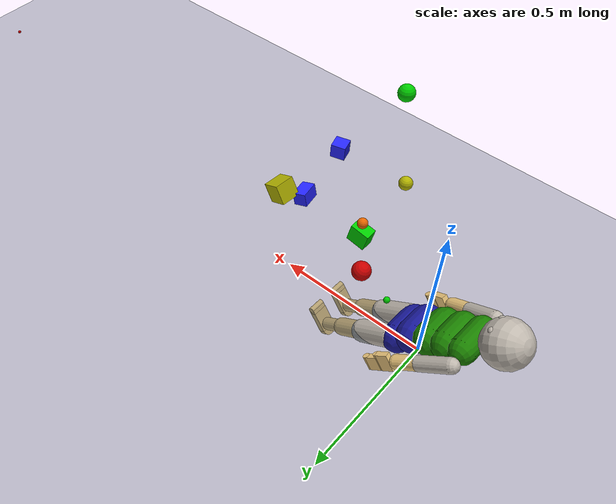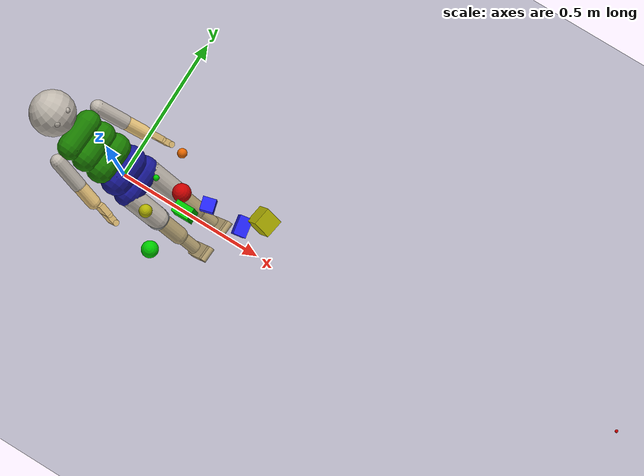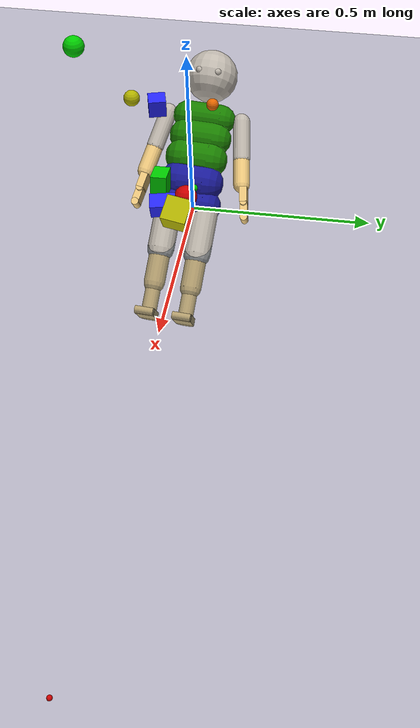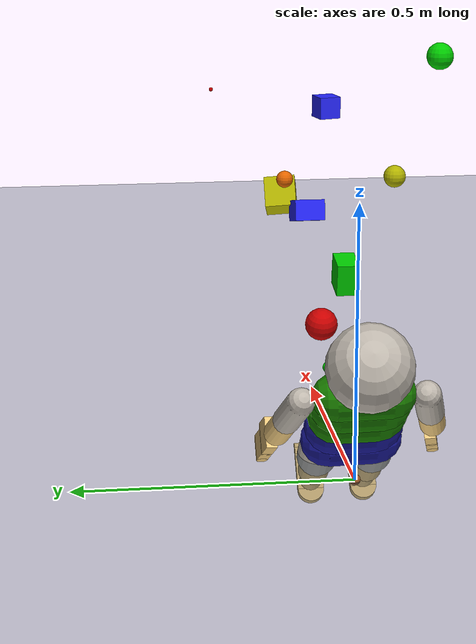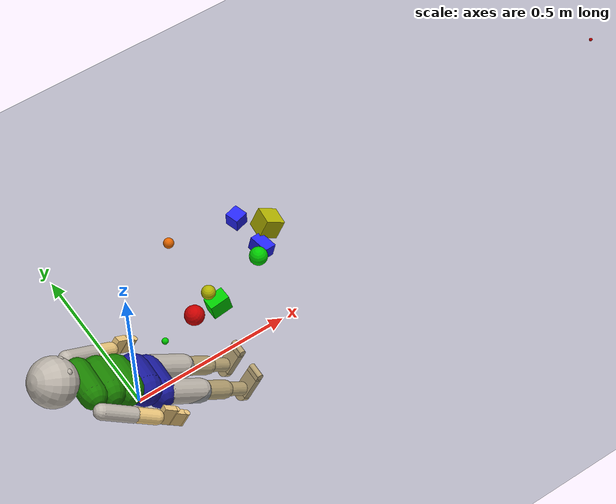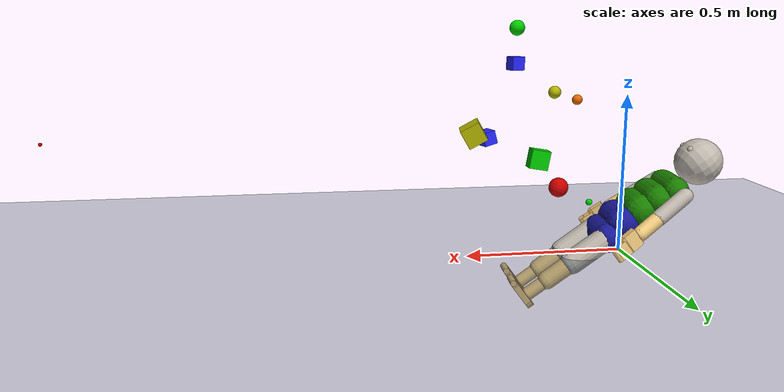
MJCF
<mujoco model="MIMo">

    <compiler inertiafromgeom="true" angle="degree"/>

    <option gravity="0 0 -9.81" timestep="0.005" iterations="50" tolerance="1e-10" solver="Newton" jacobian="dense" cone="elliptic" impratio="1.0"/>

    <size nconmax="1000" njmax="5000" nstack="10000000"/>

    <visual>
        <map force="0.1" zfar="30" znear="0.005"/>
        <rgba haze="0.15 0.25 0.35 0.5"/>
        <quality shadowsize="4096"/>
        <global offwidth="800" offheight="800"/>
    </visual>

    <default>

        <default class="scene">
			<geom condim="6" friction="1 0.005 0.0002" solimp="0.9995 0.9999 0.001 0.5 1" solref="0.005 1"/>
			<default class="scene:bouncy">
				<geom solimp="0.99 0.995 0.001 0.5 2" solref="-20000 -20"/>
			</default>
		</default>

        <geom material="matgeom" condim="3" solimp="0.95 0.99 0.001 0.5 1" solref="0.005 1"/>
    </default>

    <asset>
        <texture type="skybox" builtin="gradient" rgb1="0.3 0.5 0.7" rgb2="0 0 0" width="512" height="512"/>

        <texture name="texplane" type="2d" builtin="checker" rgb1=".2 .3 .4" rgb2=".1 0.15 0.2" width="512" height="512" mark="cross" markrgb=".8 .8 .8"/>

        <texture name="texgeom" type="cube" builtin="flat" mark="cross" width="127" height="1278"
            rgb1="0.8 0.6 0.4" rgb2="0.8 0.6 0.4" markrgb="1 1 1" random="0.01"/>

        <material name="matplane" reflectance="0.3" texture="texplane" texrepeat="1 1" texuniform="true"/>

        <material name="matgeom" texture="texgeom" texuniform="true" rgba="0.8 0.6 .4 1"/>

		<material name="matmocap" texture="texgeom" texuniform="true" rgba="0.5 0 0.5 0.5"/>

		<material name="red" rgba="0.8 0 0 1" specular=".2" shininess=".8"/>
		<material name="green" rgba="0 0.8 0 1" specular=".2" shininess=".8"/>
		<material name="blue" rgba="0.15 0.15 1 1" specular=".2" shininess=".8"/>
		<material name="yellow" rgba="0.7 0.7 0 1" specular=".2" shininess=".8"/>
		<material name="yellow_emit" rgba="0.7 0.7 0 1" specular="0.0" shininess=".4" emission="0.8"/>
		<material name="orange" rgba="0.9 0.4 0 1" specular=".2" shininess=".8"/>
    </asset>

	<!-- Import everything except the kinematic tree -->
	<include file="explore_meta.xml"></include>

	<equality>
		<weld body1="mimo_location"/>
	</equality>

    <worldbody>
        <geom name="floor" pos="0 0 0" size="0 0 .25" type="plane" material="matplane" condim="3"/>

        <light directional="false" diffuse=".7 .7 .7" specular="0 0 0" pos="-1 0 5" dir="0 0 -1" castshadow="false"/>
        <light mode="targetbodycom" target="upper_body" directional="false" diffuse=".4 .4 .4" specular="0.3 0.3 0.3" pos="0.2 0 3.0" dir="0 0 -1"/>

		<!-- The location and orientation of the base model can be set using this body -->
		<body name="mimo_location" pos="0.0579584 -0.00157173 0.0566738" quat="0.892294 -0.0284863 -0.450353 -0.0135029">
			<freejoint name="mimo_location"/>
			<include file="mimo/MIMo_model.xml"></include> <!-- Import the actual model-->
		</body>

		<!--body mocap="true" name="mocap" pos="1 0 0.4"-->

		<!-- Static -->

		<!-- Red Ball is used to test visual acuity -->
		<!-- expected acuity of an infant is 20/400, aka
			it should be able to detect a 10mm object at 1.7m distance.
			Barely visible with sigma=1 gaussian blur
		 -->
		<body name="red_ball" pos="1.7 0.08 0.4">
			<geom class="scene" type="sphere" material="red" size="0.005" pos="0 0 0" density="200"/>
		</body>

		<!--body name="red_cube" pos=".2 0.2 0.2" euler="0 -20 0"-->
		<body name="red_sphere" pos=".22 0.027 0.22" euler="0 -20 0">
			<geom class="scene" type="sphere" material="red" size="0.03" pos="0 0 0" density="200"/>
		</body>

		<!--body name="green_cube" pos=".27 -0.025 0.3" euler="0 -10 0"-->

		<body name="green_sphere_obstacle" pos=".12 0.03 0.17" euler="0 -10 0">
			<geom class="scene" type="sphere" material="green" size="0.01" pos="0 0 0" density="200"/>
		</body>

		<body name="green_cube" pos=".27 -0.025 0.3" euler="0 -10 0">
			<geom class="scene" type="box" material="green" size="0.03 0.02 0.03" pos="0 0 0" density="200"/>
		</body>

		<body name="yellow_cube" pos=".5 0.065 0.4" euler="0 30 -10">
			<geom class="scene" type="box" material="yellow" size="0.03 0.03 0.03" pos="0 0 0" density="200"/>
		</body>

		<body name="blue_cube" pos=".45 0.02 0.38" euler="0 15 10">
			<geom class="scene" type="box" material="blue" size="0.02 0.03 0.02" pos="0 0 0" density="200"/>
		</body>

        <!-- Loose Objects -->

		<body name="blue_cube_move" pos=".36 0.0 0.6" euler="0 0 15">
			<freejoint/>
			<geom class="scene" type="box" material="blue" size="0.02 0.02 0.02" pos="0 0 0" density="200"/>
		</body>

		<body name="green_sphere_move" pos=".3 -0.2 0.7">
			<freejoint/>
			<geom class="scene:bouncy" type="sphere" material="green" size="0.025" pos="0 0 0" density="200"/>
		</body>

		<body name="yellow_sphere_move" pos=".2 -0.1 0.5">
			<freejoint/>
			<geom name="geom_ysm" class="scene:bouncy" type="sphere" material="yellow_emit" size="0.02" pos="0 0 0" density="200"/>
		</body>

		<body name="orange_sphere" pos=".2 0.1 0.5">
			<freejoint/>
			<geom class="scene:bouncy" type="sphere" material="orange" size="0.015" pos="0 0 0" density="200"/>
		</body>

		<!-- Targets -->

		<body name="head_target" mocap="true" pos=".0 .0 .0">
			<geom type="sphere" size="0.01" contype="0" conaffinity="0"/>
		</body>
		<body name="hand_target" mocap="true" pos=".0 .0 .0">
			<geom type="sphere" size="0.01" contype="0" conaffinity="0"/>
		</body>

    </worldbody>

</mujoco>

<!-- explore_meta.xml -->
<mujoco model="MIMo">
	<!-- This script is used to control MIMo's joints with velocity commands -->

	<!-- We use the first three user values on actuators to store the muscle model parameters. The first is VMAX, the next two are FMAX.-->
	<size nuser_actuator="3"/>

	<default>
		<default class="mimo">
        	<joint limited="true" damping=".1" stiffness=".1" armature="0.001" solimplimit="0.98 0.99 0.001 .5 1" solreflimit="0.02 1"/>
        	<geom condim="3" material="skin" friction="1 0.005 0.0002" solimp="0.95 0.99 0.001 0.5 1" solref="0.005 1"/>
        	<intvelocity ctrlrange="-10 10" ctrllimited="true" forcelimited="true" actrange="-1.57 1.57" kp="10.0"/>
        	<!--velocity ctrlrange="-10 10" ctrllimited="true" kv='10' forcelimited="true"/--> <!-- inheritrange sets actrange to the range of the joints acted upon, to avoid integrating beyond the joint limits -->
		</default>
    </default>

    <asset>

		<texture name="tex_head_default" type="cube" fileright="tex/head_front.png" fileleft="tex/head_back.png" fileup="tex/head_left.png" filedown="tex/head_right.png" filefront="tex/head_top.png" rgb1="0.95 .8 .5"/>
		<texture name="tex_head_happy" type="cube" fileright="tex/head_front_happy.png" fileleft="tex/head_back.png" fileup="tex/head_left.png" filedown="tex/head_right.png" filefront="tex/head_top.png" rgb1="0.95 .8 .5"/>
		<texture name="tex_head_sad" type="cube" fileright="tex/head_front_sad.png" fileleft="tex/head_back.png" fileup="tex/head_left.png" filedown="tex/head_right.png" filefront="tex/head_top.png" rgb1="0.95 .8 .5"/>
		<texture name="tex_head_surprised" type="cube" fileright="tex/head_front_surprised.png" fileleft="tex/head_back.png" fileup="tex/head_left.png" filedown="tex/head_right.png" filefront="tex/head_top.png" rgb1="0.95 .8 .5"/>
		<texture name="tex_head_angry" type="cube" fileright="tex/head_front_angry.png" fileleft="tex/head_back.png" fileup="tex/head_left.png" filedown="tex/head_right.png" filefront="tex/head_top.png" rgb1="0.95 .8 .5"/>
		<texture name="tex_head_disgusted" type="cube" fileright="tex/head_front_disgusted.png" fileleft="tex/head_back.png" fileup="tex/head_left.png" filedown="tex/head_right.png" filefront="tex/head_top.png" rgb1="0.95 .8 .5"/>
		<texture name="tex_head_scared" type="cube" fileright="tex/head_front_scared.png" fileleft="tex/head_back.png" fileup="tex/head_left.png" filedown="tex/head_right.png" filefront="tex/head_top.png" rgb1="0.95 .8 .5"/>
		<texture name="tex_top_sleeve" type="cube" fileright="tex/sleeve_right.png" fileleft="tex/sleeve_left.png" fileup="tex/sleeve_up.png" filedown="tex/sleeve_down.png" filefront="tex/sleeve_front.png" fileback="tex/sleeve_back.png" rgb1="0.95 .8 .5"/>
		<texture name="tex_pants_leg" type="cube" fileright="tex/leg_right.png" fileleft="tex/leg_left.png" fileup="tex/leg_up.png" filedown="tex/leg_down.png" filefront="tex/leg_front.png" fileback="tex/leg_back.png" rgb1="0.95 .8 .5"/>
		<texture name="tex_eye_left" type="cube" fileright="tex/eye_pupil_left.png" rgb1="1 1 1"/>
		<texture name="tex_eye_right" type="cube" fileright="tex/eye_pupil_right.png" rgb1="1 1 1"/>

		<material name="skin" rgba="0.95 0.8 0.5 1" specular=".15" shininess=".7"/>
		<material name="buttons" rgba=".05 .05 .05 1" specular=".9" shininess=".9"/>
		<material name="head" texture="tex_head_default" texuniform="true" specular=".0" shininess=".0"/>
		<material name="top_up" rgba=".1 .5 0.0 1" specular=".0" shininess=".0"/>
		<material name="top_middle" rgba=".1 .5 0.0 1" specular=".0" shininess=".0"/>
		<material name="top_down" rgba=".1 .5 0.0 1" specular=".0" shininess=".0"/>
		<material name="top_sleeve" texture="tex_top_sleeve" texuniform="true" specular=".0" shininess=".0"/>
		<material name="pants_up" rgba="0.1 0.1 0.6 1" specular=".0" shininess=".0"/>
		<material name="pants_down" rgba="0.1 0.1 0.6 1" specular=".0" shininess=".0"/>
		<material name="pants_leg" texture="tex_pants_leg" texuniform="true" specular=".0" shininess=".0"/>
		<material name="eye_left" texture="tex_eye_left" texuniform="true" specular=".0" shininess=".0"/>
		<material name="eye_right" texture="tex_eye_right" texuniform="true" specular=".0" shininess=".0"/>

    </asset>

	<!-- Internal contacts should not have friction to reduce "getting stuck" on ourselves-->
	<contact>
		<pair geom1="lb" geom2="ub1" condim="1"/>
		<exclude body1="left_eye" body2="upper_body"/>
		<exclude body1="right_eye" body2="upper_body"/>

	</contact>

	<tendon>
		<fixed class="mimo" name="hip_bend" limited="true" range="-.01 .01">
			<joint joint="robot:hip_bend1" coef="1"/>
			<joint joint="robot:hip_bend2" coef="-1"/>
		</fixed>
		<fixed class="mimo" name="hip_rotation" limited="true" range="-.01 .01">
			<joint joint="robot:hip_rot1" coef="1"/>
			<joint joint="robot:hip_rot2" coef="-1"/>
		</fixed>
		<fixed class="mimo" name="hip_lean" limited="true" range="-.01 .01">
			<joint joint="robot:hip_lean1" coef="1"/>
			<joint joint="robot:hip_lean2" coef="-.5"/>
		</fixed>
		<fixed class="mimo" name="head_limits1" limited="true" range="-2.1 2.1">
			<joint joint="robot:head_swivel" coef="1"/>
			<joint joint="robot:head_tilt_side" coef="1"/>
		</fixed>
		<fixed class="mimo" name="head_limits2" limited="true" range="-2.1 2.1">
			<joint joint="robot:head_tilt" coef="1"/>
			<joint joint="robot:head_tilt_side" coef="1"/>
		</fixed>
		<fixed class="mimo" name="head_limits3" limited="true" range="-2.1 2.1">
			<joint joint="robot:head_swivel" coef="1"/>
			<joint joint="robot:head_tilt" coef="1"/>
		</fixed>
		<fixed class="mimo" name="head_limits1_sym" limited="true" range="-2.1 2.1">
			<joint joint="robot:head_swivel" coef="1"/>
			<joint joint="robot:head_tilt_side" coef="-1"/>
		</fixed>
		<fixed class="mimo" name="head_limits2_sym" limited="true" range="-2.1 2.1">
			<joint joint="robot:head_tilt" coef="1"/>
			<joint joint="robot:head_tilt_side" coef="-1"/>
		</fixed>
		<fixed class="mimo" name="head_limits3_sym" limited="true" range="-2.1 2.1">
			<joint joint="robot:head_swivel" coef="1"/>
			<joint joint="robot:head_tilt" coef="-1"/>
		</fixed>
	</tendon>

	<sensor>
		<accelerometer name="vestibular_acc" site="vestibular"/>
		<gyro name="vestibular_gyro" site="vestibular"/>

		<torque name="proprio:neck" site="torque_neck"/>
		<torque name="proprio:left_eye" site="torque_left_eye"/>
		<torque name="proprio:right_eye" site="torque_right_eye"/>

		<torque name="proprio:trunk_upper" site="torque_ub"/>
		<torque name="proprio:trunk_lower" site="torque_lb"/>

		<torque name="proprio:right_shoulder" site="torque_right_shoulder"/>
		<torque name="proprio:right_elbow" site="torque_right_elbow"/>
		<torque name="proprio:right_wrist" site="torque_right_wrist"/>
		<torque name="proprio:right_fingers" site="torque_right_fingers"/>

		<torque name="proprio:left_shoulder" site="torque_left_shoulder"/>
		<torque name="proprio:left_elbow" site="torque_left_elbow"/>
		<torque name="proprio:left_wrist" site="torque_left_wrist"/>
		<torque name="proprio:left_fingers" site="torque_left_fingers"/>

		<torque name="proprio:right_hip" site="torque_right_hip"/>
		<torque name="proprio:right_knee" site="torque_right_knee"/>
		<torque name="proprio:right_ankle" site="torque_right_ankle"/>
		<torque name="proprio:right_toes" site="torque_right_toes"/>

		<torque name="proprio:left_hip" site="torque_left_hip"/>
		<torque name="proprio:left_knee" site="torque_left_knee"/>
		<torque name="proprio:left_ankle" site="torque_left_ankle"/>
		<torque name="proprio:left_toes" site="torque_left_toes"/>
	</sensor>

	<actuator>
		<intvelocity class="mimo"	name="act:hip_bend" 						joint="robot:hip_bend1" 	 actrange="-0.2967 0.5323" 		forcerange="-1 .765"	user=".8574 32.93 22.97"/>
		<intvelocity class="mimo"	name="act:hip_twist" 						joint="robot:hip_rot1" 		  actrange="-0.3142 0.3142"		forcerange="-1 1"		user="1.699 8.136 8.136"/>
		<intvelocity class="mimo"	name="act:hip_lean" 						joint="robot:hip_lean1" 	  actrange="-0.2443 0.2443"		forcerange="-1 1"		user="1.278 1.264 1.264"/>

		<intvelocity class="mimo"	name="act:head_swivel" 						joint="robot:head_swivel" 				 actrange="-1.939 1.939" 			forcerange="-1 1"		user=".6665 24.87 24.87"/>
		<intvelocity class="mimo"	name="act:head_tilt" 						joint="robot:head_tilt" 				 actrange="-1.2217 1.415" 			forcerange="-1 0.55"		user=".9338 31.39 16.86"/>
		<intvelocity class="mimo"	name="act:head_tilt_side" 					joint="robot:head_tilt_side" 			 actrange="-1.2217 1.2217" 			forcerange="-1 1"		user="1.068 15.69 15.69"/>

		<intvelocity class="mimo" 	name="act:left_eye_horizontal" 				joint="robot:left_eye_horizontal" 		actrange="-0.7854 0.7854" 		forcerange="-1 1"		user="5.110 .03025 .03025"/>
		<intvelocity class="mimo" 	name="act:left_eye_vertical" 				joint="robot:left_eye_vertical" 		actrange="-0.8203 0.5759" 		forcerange="-1 1"		user="6.179 .02619 .02771"/>
		<intvelocity class="mimo" 	name="act:left_eye_torsional" 				joint="robot:left_eye_torsional" 		actrange="-0.1396 0.1396" 		forcerange="-1 1"		user="25.03 .003686 .003686"/>
		<intvelocity class="mimo" 	name="act:right_eye_horizontal" 			joint="robot:right_eye_horizontal" 		actrange="-0.7854 0.7854" 		forcerange="-1 1"		user="5.110 .03025 .03025"/>
		<intvelocity class="mimo" 	name="act:right_eye_vertical" 				joint="robot:right_eye_vertical" 		actrange="-0.8203 0.5759" 		forcerange="-1 1"		user="6.179 .02619 .02771"/>
		<intvelocity class="mimo" 	name="act:right_eye_torsional" 				joint="robot:right_eye_torsional" 		actrange="-0.1396 0.1396" 		forcerange="-1 1"		user="25.03 .003686 .003686"/>

		<intvelocity class="mimo"	name="act:right_shoulder_horizontal" 		joint="robot:right_shoulder_horizontal" actrange="-0.4887 2.061"		forcerange="-1 1"		user="1.811 18.80 15.30"/>
		<intvelocity class="mimo"	name="act:right_shoulder_abduction" 		joint="robot:right_shoulder_ad_ab" 		actrange="-1.466 3.183"		forcerange="-.6875 1"	user=".8793 44.17 69.23"/>
		<intvelocity class="mimo"	name="act:right_shoulder_internal" 			joint="robot:right_shoulder_rotation"	actrange="-1.7279 1.169"		forcerange="-1 .64"		user="1.498 25.09 17.10"/>
		<intvelocity class="mimo"	name="act:right_elbow" 						joint="robot:right_elbow"				actrange="-2.5482 0.0873"		forcerange="-1 .83"		user="1.566 35.43 27.04"/>
		<intvelocity class="mimo"	name="act:right_wrist_rotation" 			joint="robot:right_hand1" 				actrange="-1.5708 1.5708"		forcerange="-1 1"		user="1.513 7.842 7.842"/>
		<intvelocity class="mimo"	name="act:right_wrist_flexion" 				joint="robot:right_hand2" 				actrange="-1.6057 1.5009"		forcerange="-1 .57"		user="1.455 13.66 7.874"/>
		<intvelocity class="mimo"	name="act:right_wrist_ulnar" 				joint="robot:right_hand3" 				actrange="-0.9250 0.8378"		forcerange="-.87 1"		user="2.254 5.155 6.021"/>
		<intvelocity class="mimo" 	name="act:right_fingers" 					joint="robot:right_fingers" 			actrange="-2.7925 0.1396"		forcerange="-1 .33" 	user="3.019 6.854 2.551"/>

		<intvelocity class="mimo"	name="act:left_shoulder_horizontal" 		joint="robot:left_shoulder_horizontal" 	actrange="-0.4887 2.061"		forcerange="-1 1"		user="1.811 18.80 15.30"/>
		<intvelocity class="mimo"	name="act:left_shoulder_abduction" 			joint="robot:left_shoulder_ad_ab" 		actrange="-1.466 3.183"		forcerange="-.6875 1"	user=".8793 44.17 69.23"/>
		<intvelocity class="mimo"	name="act:left_shoulder_internal" 			joint="robot:left_shoulder_rotation" 	actrange="-1.7279 1.169"		forcerange="-1 .64"		user="1.498 25.09 17.10"/>
		<intvelocity class="mimo"	name="act:left_elbow" 						joint="robot:left_elbow" 				actrange="-2.5482 0.0873"		forcerange="-1 .83"		user="1.566 35.43 27.04"/>
		<intvelocity class="mimo"	name="act:left_wrist_rotation" 				joint="robot:left_hand1"  				actrange="-1.5708 1.5708"		forcerange="-1 1"		user="1.513 7.842 7.842"/>
		<intvelocity class="mimo"	name="act:left_wrist_flexion" 				joint="robot:left_hand2"  				actrange="-1.6057 1.5009"		forcerange="-1 .57"		user="1.455 13.66 7.874"/>
		<intvelocity class="mimo"	name="act:left_wrist_ulnar" 				joint="robot:left_hand3"  				actrange="-0.9250 0.8378"		forcerange="-.87 1"		user="2.254 5.155 6.021"/>
		<intvelocity class="mimo" 	name="act:left_fingers" 					joint="robot:left_fingers" 				actrange="-2.7925 0.1396"		forcerange="-1 .33" 	user="3.019 6.854 2.551"/>

		<intvelocity class="mimo"	name="act:right_hip_flex" 					joint="robot:right_hip1" 				actrange="-2.3213 0.3491"		forcerange="-1 1"		user="1.083 71.25 92.49"/>
		<intvelocity class="mimo"	name="act:right_hip_abduction" 				joint="robot:right_hip2" 				actrange="-0.8901 0.2967"		forcerange="-1 1"		user="1.488 24.81 29.20"/>
		<intvelocity class="mimo"	name="act:right_hip_rotation" 				joint="robot:right_hip3" 				actrange="-0.5585 0.7156"		forcerange="-.75 1"		user="1.860 12.32 15.78"/>
		<intvelocity class="mimo"	name="act:right_knee" 						joint="robot:right_knee" 				actrange="-2.5307 0.0873"		forcerange="-.65 1"		user="1.450 63.16 89.27"/>
		<intvelocity class="mimo"	name="act:right_foot_flexion" 				joint="robot:right_foot1" 				actrange="-1.0996 0.5585"		forcerange="-1 .5"		user="1.430 21.34 11.87"/>
		<intvelocity class="mimo"	name="act:right_foot_inversion" 			joint="robot:right_foot2" 				actrange="-0.5759 0.5759"		forcerange="-.91 1"		user="1.988 4.184 4.645"/>
		<intvelocity class="mimo"	name="act:right_foot_rotation" 				joint="robot:right_foot3"	 			actrange="-0.3491 0.5236"		forcerange="-1 1"		user="2.688 3.868 3.625"/>
		<intvelocity class="mimo"	name="act:right_toes" 						joint="robot:right_toes"	 			actrange="-1.0472 1.3963"		forcerange="-1 .3" 		user="1.290 2.947 .8440"/>

		<intvelocity class="mimo"	name="act:left_hip_flex" 					joint="robot:left_hip1" 				actrange="-2.3213 0.3491"		forcerange="-1 1"		user="1.083 71.25 92.49"/>
		<intvelocity class="mimo"	name="act:left_hip_abduction" 				joint="robot:left_hip2" 				actrange="-0.8901 0.2967"		forcerange="-1 1"		user="1.488 24.81 29.20"/>
		<intvelocity class="mimo"	name="act:left_hip_rotation" 				joint="robot:left_hip3"					actrange="-0.5585 0.7156"		forcerange="-.75 1"		user="1.860 12.32 15.78"/>
		<intvelocity class="mimo"	name="act:left_knee" 						joint="robot:left_knee" 				actrange="-2.5307 0.0873"		forcerange="-.65 1"		user="1.450 63.16 89.27"/>
		<intvelocity class="mimo"	name="act:left_foot_flexion" 				joint="robot:left_foot1" 				actrange="-1.0996 0.5585"		forcerange="-1 .5"		user="1.430 21.34 11.87"/>
		<intvelocity class="mimo"	name="act:left_foot_inversion" 				joint="robot:left_foot2" 				actrange="-0.5759 0.5759"		forcerange="-.91 1"		user="1.988 4.184 4.645"/>
		<intvelocity class="mimo"	name="act:left_foot_rotation" 				joint="robot:left_foot3" 				actrange="-0.3491 0.5236"		forcerange="-1 1"		user="2.688 3.868 3.625"/>
		<intvelocity class="mimo"	name="act:left_toes" 						joint="robot:left_toes"	 				actrange="-1.0472 1.3963"		forcerange="-1 .3" 		user="1.290 2.947 .8440"/>
	</actuator>

	<equality> <!-- These contraints are used for joint locking during runtime -->
		<joint name="robot:hip_lean1" 					joint1="robot:hip_lean1" active="false" polycoef="0 1 0 0 0"/>
		<joint name="robot:hip_rot1" 					joint1="robot:hip_rot1" active="false" polycoef="0 1 0 0 0"/>
		<joint name="robot:hip_bend1" 					joint1="robot:hip_bend1" active="false" polycoef="0 1 0 0 0"/>
		<joint name="robot:hip_lean2" 					joint1="robot:hip_lean2" active="false" polycoef="0 1 0 0 0"/>
		<joint name="robot:hip_rot2" 					joint1="robot:hip_rot2" active="false" polycoef="0 1 0 0 0"/>
		<joint name="robot:hip_bend2" 					joint1="robot:hip_bend2" active="false" polycoef="0 1 0 0 0"/>
		<joint name="robot:head_swivel" 				joint1="robot:head_swivel" active="false" polycoef="0 1 0 0 0"/>
		<joint name="robot:head_tilt" 					joint1="robot:head_tilt" active="false" polycoef="0 1 0 0 0"/>
		<joint name="robot:head_tilt_side" 				joint1="robot:head_tilt_side" active="false" polycoef="0 1 0 0 0"/>
		<joint name="robot:left_eye_horizontal" 		joint1="robot:left_eye_horizontal" active="false" polycoef="0 1 0 0 0"/>
		<joint name="robot:left_eye_vertical" 			joint1="robot:left_eye_vertical" active="false" polycoef="0 1 0 0 0"/>
		<joint name="robot:left_eye_torsional" 			joint1="robot:left_eye_torsional" active="false" polycoef="0 1 0 0 0"/>
		<joint name="robot:right_eye_horizontal" 		joint1="robot:right_eye_horizontal" active="false" polycoef="0 1 0 0 0"/>
		<joint name="robot:right_eye_vertical" 			joint1="robot:right_eye_vertical" active="false" polycoef="0 1 0 0 0"/>
		<joint name="robot:right_eye_torsional" 		joint1="robot:right_eye_torsional" active="false" polycoef="0 1 0 0 0"/>
		<joint name="robot:right_shoulder_horizontal" 	joint1="robot:right_shoulder_horizontal" active="false" polycoef="0 1 0 0 0"/>
		<joint name="robot:right_shoulder_ad_ab" 		joint1="robot:right_shoulder_ad_ab" active="false" polycoef="0 1 0 0 0"/>
		<joint name="robot:right_shoulder_rotation" 	joint1="robot:right_shoulder_rotation" active="false" polycoef="0 1 0 0 0"/>
		<joint name="robot:right_elbow" 				joint1="robot:right_elbow" active="false" polycoef="0 1 0 0 0"/>
		<joint name="robot:right_hand1" 				joint1="robot:right_hand1" active="false" polycoef="0 1 0 0 0"/>
		<joint name="robot:right_hand2" 				joint1="robot:right_hand2" active="false" polycoef="0 1 0 0 0"/>
		<joint name="robot:right_hand3" 				joint1="robot:right_hand3" active="false" polycoef="0 1 0 0 0"/>
		<joint name="robot:right_fingers" 				joint1="robot:right_fingers" active="false" polycoef="0 1 0 0 0"/>
		<joint name="robot:left_shoulder_horizontal" 	joint1="robot:left_shoulder_horizontal" active="false" polycoef="0 1 0 0 0"/>
		<joint name="robot:left_shoulder_ad_ab" 		joint1="robot:left_shoulder_ad_ab" active="false" polycoef="0 1 0 0 0"/>
		<joint name="robot:left_shoulder_rotation" 		joint1="robot:left_shoulder_rotation" active="false" polycoef="0 1 0 0 0"/>
		<joint name="robot:left_elbow" 					joint1="robot:left_elbow" active="false" polycoef="0 1 0 0 0"/>
		<joint name="robot:left_hand1" 					joint1="robot:left_hand1" active="false" polycoef="0 1 0 0 0"/>
		<joint name="robot:left_hand2" 					joint1="robot:left_hand2" active="false" polycoef="0 1 0 0 0"/>
		<joint name="robot:left_hand3" 					joint1="robot:left_hand3" active="false" polycoef="0 1 0 0 0"/>
		<joint name="robot:left_fingers" 				joint1="robot:left_fingers" active="false" polycoef="0 1 0 0 0"/>
		<joint name="robot:right_hip1" 					joint1="robot:right_hip1" active="false" polycoef="0 1 0 0 0"/>
		<joint name="robot:right_hip2" 					joint1="robot:right_hip2" active="false" polycoef="0 1 0 0 0"/>
		<joint name="robot:right_hip3" 					joint1="robot:right_hip3" active="false" polycoef="0 1 0 0 0"/>
		<joint name="robot:right_knee" 					joint1="robot:right_knee" active="false" polycoef="0 1 0 0 0"/>
		<joint name="robot:right_foot1" 				joint1="robot:right_foot1" active="false" polycoef="0 1 0 0 0"/>
		<joint name="robot:right_foot2" 				joint1="robot:right_foot2" active="false" polycoef="0 1 0 0 0"/>
		<joint name="robot:right_foot3" 				joint1="robot:right_foot3" active="false" polycoef="0 1 0 0 0"/>
		<joint name="robot:right_toes" 					joint1="robot:right_toes" active="false" polycoef="0 1 0 0 0"/>
		<joint name="robot:left_hip1" 					joint1="robot:left_hip1" active="false" polycoef="0 1 0 0 0"/>
		<joint name="robot:left_hip2" 					joint1="robot:left_hip2" active="false" polycoef="0 1 0 0 0"/>
		<joint name="robot:left_hip3" 					joint1="robot:left_hip3" active="false" polycoef="0 1 0 0 0"/>
		<joint name="robot:left_knee" 					joint1="robot:left_knee" active="false" polycoef="0 1 0 0 0"/>
		<joint name="robot:left_foot1" 					joint1="robot:left_foot1" active="false" polycoef="0 1 0 0 0"/>
		<joint name="robot:left_foot2" 					joint1="robot:left_foot2" active="false" polycoef="0 1 0 0 0"/>
		<joint name="robot:left_foot3" 					joint1="robot:left_foot3" active="false" polycoef="0 1 0 0 0"/>
		<joint name="robot:left_toes" 					joint1="robot:left_toes" active="false" polycoef="0 1 0 0 0"/>
	</equality>

</mujoco>

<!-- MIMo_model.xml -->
<mujoco model="MIMo">

	<body childclass="mimo" name="hip" pos="0 0 0">
		<!-- Whole body height is 77.8 cm -->
		<geom name="lb" type="capsule" size=".048 .043" mass="1.1584" material="pants_down" pos="-.002 0 0.005" euler="90 0 0"/>
		<site name="lowerBody_center" type="sphere" size=".01 .01 .01" pos="0 0 0"/>
		<body name="lower_body" pos="0.002 0 0.076">
			<joint name="robot:hip_lean1" type="hinge" pos="0 0 -.05" axis="1 0 0" range="-14 14" stiffness="3.38" damping="0.77" frictionloss=".049" armature="0.01"/>
			<joint name="robot:hip_rot1" type="hinge" pos="0 0 -.05" axis="0 0 1" range="-18 18" stiffness="1.45" damping="0.29" frictionloss=".018" armature="0.01"/>
			<joint name="robot:hip_bend1" type="hinge" pos="0 0 -0.05" axis="0 1 0" range="-17 30.5" stiffness="2.20" damping="0.84" frictionloss="0.040" armature="0.01"/>
			<site name="torque_lb" type="sphere" size="0.01" pos="0 0 0" group="4"/>
			<geom name="cb" type="capsule" size=".053 .035" mass="1.3245" material="pants_up" contype="0" pos="0.005 0 -.008" euler="90 0 0"/>

			<body name="upper_body" pos="-.002 0 0.091">
				<joint name="robot:hip_lean2" type="hinge" pos="0 0 -.05" axis="1 0 0" range="-27 27" stiffness="1.69" damping="0.38" frictionloss=".024" armature="0.01"/>
				<joint name="robot:hip_rot2" type="hinge" pos="0 0 -.05" axis="0 0 1" range="-18 18" stiffness="1.45" damping="0.29" frictionloss=".018" armature="0.01"/>
				<joint name="robot:hip_bend2" type="hinge" pos="0 0 -.05" axis="0 1 0" range="-17 30.5" stiffness="2.20" damping="0.84" frictionloss="0.040" armature="0.01"/>
				<site name="torque_ub" type="sphere" size="0.01" pos="0 0 0" group="4"/>
				<geom name="ub1" type="capsule" size=".052 .035" mass="1.0882" material="top_down" pos="0.007 0 -.032" euler="90 0 0"/>
				<geom name="ub2" type="capsule" size=".048 .039" mass="0.9499" material="top_middle" pos="0.004 0 0.03" euler="90 0 0"/>
				<geom name="ub3" type="capsule" size=".041 .047" mass="0.7217" material="top_up" pos="0 0 0.09" euler="90 0 0"/>

				<body name="head" pos="0 0 .135">
					<geom name="head" type="sphere" size=".0735" mass="1.7748" material="head" pos="0.01 0 0.0735"/>
					<site name="vestibular" type="sphere" size="0.01" pos="0.01 0 0.0735" group="4"/>
					<site name="torque_neck" type="sphere" size="0.01" pos="0 0 0" group="4"/>
					<joint name="robot:head_swivel" type="hinge" pos="0 0 0" axis="0 0 1" range="-111 111" stiffness=".23" damping=".29" frictionloss=".018" armature="0.005"/>
					<joint name="robot:head_tilt" type="hinge" pos="0 0 0.0123" axis="0 1 0" range="-70 81" stiffness=".45" damping=".53" frictionloss=".018" armature="0.005"/>
					<joint name="robot:head_tilt_side" type="hinge" pos="0 0 0.0245" axis="1 0 0" range="-70 70" stiffness=".37" damping=".29" frictionloss=".018" armature="0.005"/>
					<site name="eef:head" type="sphere" size="0.01" pos=".05 0.0 .067375" group="5"/> <!-- inbetween eyes, z pointing forward -->

					<body name="left_eye" pos=".07 .0245 .067375">
						<site name="torque_left_eye" type="sphere" size="0.01" pos="0 0 0" group="4"/>
						<joint name="robot:left_eye_horizontal" type="hinge" pos="0 0 0" axis="0 0 1" range="-45 45" stiffness=".00065" damping=".00042" frictionloss=".000054" armature=".0002"/>
						<joint name="robot:left_eye_vertical" type="hinge" pos="0 0 0" axis="0 -1 0" range="-47 33" stiffness=".00065" damping=".00042" frictionloss=".000054" armature=".0002"/>
						<joint name="robot:left_eye_torsional" type="hinge" pos="0 0 0" axis="-1 0 0" range="-8 8" stiffness=".00267" damping=".00042" frictionloss=".000037" armature=".0002"/>
						<geom type="sphere" material="eye_left" size=".01125" mass=".006275" pos="0 0 0"/>
						<!--camera name="eye_left" mode="fixed" fovy="60" pos="0.01125 0 0" euler="90 -90 0"/-->
						<camera name="eye_left" mode="fixed" fovy="60" pos="0.02 0 0" euler="90 -90 0"/>
						<site name="eef:left_eye" type="sphere" size="0.01" pos="0 0 0" group="5"/>
					</body>
					<body name="right_eye" pos=".07 -.0245 .067375">
						<site name="torque_right_eye" type="sphere" size="0.01" pos="0 0 0" group="4"/>
						<joint name="robot:right_eye_horizontal" type="hinge" pos="0 0 0" axis="0 0 -1" range="-45 45" stiffness=".00065" damping=".00042" frictionloss=".000054" armature=".0002"/>
						<joint name="robot:right_eye_vertical" type="hinge" pos="0 0 0" axis="0 -1 0" range="-47 33" stiffness=".00065" damping=".00042" frictionloss=".000054" armature=".0002"/>
						<joint name="robot:right_eye_torsional" type="hinge" pos="0 0 0" axis="1 0 0" range="-8 8" stiffness=".00267" damping=".00042" frictionloss=".000037" armature=".0002"/>
						<geom type="sphere" material="eye_right" size=".01125" mass=".006275" pos="0 0 0"/>
						<!--camera name="eye_right" mode="fixed" fovy="60" pos="0.01125 0 0" euler="90 -90 0"/-->
						<camera name="eye_right" mode="fixed" fovy="60" pos="0.02 0 0" euler="90 -90 0"/>
						<site name="eef:right_eye" type="sphere" size="0.01" pos="0 0 0" group="5"/>
					</body>
				</body>

				<body name="right_upper_arm" pos="-.005 -0.105 .093" euler="170 0 0">
					<!-- Arm length is 31.36cm -->
					<joint name="robot:right_shoulder_horizontal" type="hinge" pos="0 -.024 0" axis="0 1 -4" range="-28 118" stiffness=".09" damping=".05" frictionloss=".0009" armature="0.004"/>
					<joint name="robot:right_shoulder_ad_ab" type="hinge" pos="0 0 0" axis="-1 0 0" range="-84 183" stiffness=".11" damping=".10" frictionloss=".0014" armature="0.004"/>
					<joint name="robot:right_shoulder_rotation" type="hinge" pos="0 0 0" axis="0 0 -1" range="-99 67" stiffness=".12" damping=".07" frictionloss=".0008" armature="0.004"/>
					<site name="torque_right_shoulder" type="sphere" size="0.01" pos="0 0 0" group="4"/>
					<geom name="right_uarm1" type="capsule" material="top_sleeve" size="0.024 0.0536" mass=".2684" pos="0 0 .0536" euler="0 0 0"/>
					<body name="right_lower_arm" pos="0 0 .1076" euler="0 0 0">
						<joint name="robot:right_elbow" type="hinge" pos="0 0 0" axis="0 -1 0" springref="-20" range="-146 5" stiffness=".13" damping=".11" frictionloss=".030" armature="0.002"/>
						<site name="torque_right_elbow" type="sphere" size="0.01" pos="0 0 0" group="4"/>
						<geom name="right_larm" type="capsule" size=".023 0.037" mass=".1853" pos="0 0 .037"/>
						<body name="right_hand" pos="0 -.007 .087" euler="0 0 0"> <!-- Hand length is 9.3, Palm length is 5.16 -->
							<joint name="robot:right_hand1" type="hinge" pos="0 .007 0" axis="0 0 -1" springref="-20" range="-90 90" stiffness=".22" damping=".03" frictionloss=".007" armature="0.001"/>
							<joint name="robot:right_hand2" type="hinge" pos="0 0 0" axis="-1 0 0" range="-92 86" stiffness=".33" damping=".11" frictionloss=".007" armature="0.001"/>
							<joint name="robot:right_hand3" type="hinge" pos="0 0 0" axis="0 1 0" range="-53 48" stiffness=".38" damping=".11" frictionloss=".007" armature="0.001"/>
							<site name="torque_right_wrist" type="sphere" size="0.01" pos="0 0 0" group="4"/>
							<geom type="box" size=".0281 .01 .0208" mass=".04315" pos=".005 0 .0208"/>
							<geom type="cylinder" size=".0102 .0278" mass=".01602" pos=".005 0 .0416" euler="0 90 0"/>
							<site name="eef:right_hand" pos="0 -0.01 .02" size="0.01" group="5"/> <!-- center of the palm -->
							<body name="right_fingers" pos="0 0 .0416"> <!-- Finger length is 5.14 cm, 1 cm overlap between palm and fingers -->
								<joint name="robot:right_fingers" type="hinge" pos="0 0 0" axis="-1 0 0" springref="-40" range="-160 8" stiffness=".017" damping=".018" frictionloss=".0023" armature="0.0001"/>
								<site name="torque_right_fingers" type="sphere" size="0.01" pos="0 0 0" group="4"/>
								<geom type="box" size=".0228 .01 .0207" mass=".03494" pos="0 0 .0207" friction="5 0.02 0.01"/>
								<geom type="cylinder" size=".0102 .023" mass=".01323" pos="0 0 .0414" euler="0 90 0" friction="5 0.02 0.01"/>
							</body>
						</body>
					</body>
				</body>

				<body name="left_upper_arm" pos="-.005 0.105 .093" euler="-170 0 0">
					<!-- Arm length is 31.36cm -->
					<joint name="robot:left_shoulder_horizontal" type="hinge" pos="0 .024 0" axis="0 1 4" range="-28 118" stiffness=".09" damping=".05" frictionloss=".0009" armature="0.004"/>
					<joint name="robot:left_shoulder_ad_ab" type="hinge" pos="0 0 0" axis="1 0 0" range="-84 183" stiffness=".11" damping=".10" frictionloss=".0014" armature="0.004"/>
					<joint name="robot:left_shoulder_rotation" type="hinge" pos="0 0 0" axis="0 0 1" range="-99 67" stiffness=".12" damping=".07" frictionloss=".0008" armature="0.004"/>
					<site name="torque_left_shoulder" type="sphere" size="0.01" pos="0 0 0" group="4"/>
					<geom name="left_uarm1" type="capsule" material="top_sleeve" size="0.024 0.0536" mass=".2684" pos="0 0 .0536" euler="0 0 0"/>
					<body name="left_lower_arm" pos="0 0 .1076" euler="0 0 0">
						<joint name="robot:left_elbow" type="hinge" pos="0 0 0" axis="0 -1 0" springref="-20" range="-146 5" stiffness=".13" damping=".11" frictionloss=".030" armature="0.002"/>
						<site name="torque_left_elbow" type="sphere" size="0.01" pos="0 0 0" group="4"/>
						<geom name="left_larm" type="capsule" size=".023 0.037" mass=".1853" pos="0 0 .037"/>
						<body name="left_hand" pos="0 -.007 .087" euler="0 0 0"> <!-- Hand length is 9.3, Palm length is 5.16 -->
							<joint name="robot:left_hand1" type="hinge" pos="0 .007 0" axis="0 0 1" springref="-20" range="-90 90" stiffness=".22" damping=".03" frictionloss=".007" armature="0.001"/>
							<joint name="robot:left_hand2" type="hinge" pos="0 0 0" axis="1 0 0" range="-92 86" stiffness=".33" damping=".11" frictionloss=".007" armature="0.001"/>
							<joint name="robot:left_hand3" type="hinge" pos="0 0 0" axis="0 1 0" range="-53 48" stiffness=".38" damping=".11" frictionloss=".007" armature="0.001"/>
							<site name="torque_left_wrist" type="sphere" size="0.01" pos="0 0 0" group="4"/>
							<geom type="box" size=".0281 .01 .0208" mass=".04315" pos=".005 0 .0208"/>
							<geom type="cylinder" size=".0102 .0278" mass=".01602" pos=".005 0 .0416" euler="0 90 0"/>
							<site name="eef:left_hand" pos="0 0.01 .02" size="0.01" group="5"/> <!-- center of the palm -->
							<body name="left_fingers" pos="0 0 .0416"> <!-- Finger length is 5.14 cm, 1 cm overlap between palm and fingers -->
								<joint name="robot:left_fingers" type="hinge" pos="0 0 0" axis="1 0 0" springref="-40" range="-160 8" stiffness=".017" damping=".018" frictionloss=".0023" armature="0.0001"/>
								<site name="torque_left_fingers" type="sphere" size="0.01" pos="0 0 0" group="4"/>
								<geom type="box" size=".0228 .01 .0207" mass=".03494" pos="0 0 .0207" friction="5 0.02 0.01"/>
								<geom type="cylinder" size=".0102 .023" mass=".01323" pos="0 0 .0414" euler="0 90 0" friction="5 0.02 0.01"/>
							</body>
						</body>
					</body>
				</body>
			</body>
		</body>

		<body name="right_upper_leg" pos="0.005 -.051 -.007">
			<!-- leg length is 32.9 cm -->
			<joint name="robot:right_hip1" type="hinge" pos="0 0 0" axis="0 1 0" springref="-10" range="-133 20" stiffness="1.72" damping="1.27" frictionloss=".08" armature=".005"/>
			<joint name="robot:right_hip2" type="hinge" pos="0 0 0" axis="1 0 0" range="-51 17" stiffness="3.51" damping="1.99" frictionloss=".062" armature=".005"/>
			<joint name="robot:right_hip3" type="hinge" pos="0 0 0" axis="0 0 -1" range="-32 41" stiffness="2.16" damping="0.75" frictionloss=".027" armature=".005"/>
			<site name="torque_right_hip" type="sphere" size="0.01" pos="0 0 0" group="4"/>
			<geom type="capsule" material="pants_leg" contype="2" conaffinity="3" size=".037 .0625" mass=".7998" pos="0 0 -.0645" euler="0 0 0"/>
			<body name="right_lower_leg" pos="0 0 -.135">
				<joint name="robot:right_knee" type="hinge" pos="0 0 0" axis="0 -1 0" springref="-30" range="-145 4" stiffness="1.63" damping="0.53" frictionloss=".065" armature=".003"/>
				<site name="torque_right_knee" type="sphere" size="0.01" pos="0 0 0" group="4"/>
				<geom type="capsule" size=".029 .044" mass=".3341" pos="0 0 -.044" euler="0 0 0"/>
				<geom type="capsule" size=".021 .028" mass=".1160" pos="0 0 -.134" euler="0 0 0"/>
				<body name="right_foot" pos="0 0 -.177">
					<joint name="robot:right_foot1" type="hinge" pos="0 0 .015" axis="0 -1 0" springref="-10" range="-63 32" stiffness="1.29" damping="0.6" frictionloss=".019" armature=".003"/>
					<joint name="robot:right_foot2" type="hinge" pos="0 0 .015" axis="1 0 0" range="-33 31" stiffness="0.96" damping="0.37" frictionloss=".011" armature=".0025"/>
					<joint name="robot:right_foot3" type="hinge" pos="0 0 .015" axis="0 0 1" range="-20 30" stiffness="1.15" damping="0.38" frictionloss=".012" armature=".002"/>
					<site name="torque_right_ankle" type="sphere" size="0.01" pos="0 0 0" group="4"/>
					<geom type="cylinder" size=".0249 .0099" mass=".03219" pos="-0.016 0 0" euler="0 0 0"/>
					<geom type="box" size=".035  .025 .01" mass=".05850" pos="0.019 0 0" euler="0 0 0" friction="2 0.02 0.01"/>
					<geom type="cylinder" size=".0099 .0248" mass=".01268" pos=".054 0 0" euler="90 0 0" friction="2 0.02 0.01"/>
					<body name="right_toes" pos=".054 0 0">
						<joint name="robot:right_toes" type="hinge" pos="0 0 0" axis="0 -1 0" range="-60 80" frictionloss=".005" armature=".0005" stiffness=".106" damping=".04"/>
						<site name="torque_right_toes" type="sphere" size="0.01" pos="0 0 0" group="4"/>
						<geom type="box" size=".007 .0249 .0099" mass=".01084" pos=".007 0 0" euler="0 0 0" friction="2 0.02 0.01"/>
						<geom type="cylinder" size=".01 .025" mass=".01226" pos=".014 0 0" euler="90 0 0" friction="2 0.02 0.01"/>
					</body>
				</body>
			</body>
		</body>

		<body name="left_upper_leg" pos="0.005 .051 -.007">
			<!-- leg length is 32.9 cm -->
			<joint name="robot:left_hip1" type="hinge" pos="0 0 0" axis="0 1 0" springref="-10" range="-133 20" stiffness="1.72" damping="1.27" frictionloss=".08" armature=".005"/>
			<joint name="robot:left_hip2" type="hinge" pos="0 0 0" axis="-1 0 0" range="-51 17" stiffness="3.51" damping="1.99" frictionloss=".062" armature=".005"/>
			<joint name="robot:left_hip3" type="hinge" pos="0 0 0" axis="0 0 1" range="-32 41" stiffness="2.16" damping="0.75" frictionloss=".027" armature=".005"/>
			<site name="torque_left_hip" type="sphere" size="0.01" pos="0 0 0" group="4"/>
			<geom type="capsule" material="pants_leg" contype="2" conaffinity="3" size=".037 .0625" mass=".7998" pos="0 0 -.0645" euler="0 0 0"/>
			<body name="left_lower_leg" pos="0 0 -.135">
				<joint name="robot:left_knee" type="hinge" pos="0 0 0" axis="0 -1 0" springref="-30" range="-145 4" stiffness="1.63" damping="0.53" frictionloss=".065" armature=".003"/>
				<site name="torque_left_knee" type="sphere" size="0.01" pos="0 0 0" group="4"/>
				<geom type="capsule" size=".029 .044" mass=".3341" pos="0 0 -.044" euler="0 0 0"/>
				<geom type="capsule" size=".021 .028" mass=".1160" pos="0 0 -.134" euler="0 0 0"/>
				<body name="left_foot" pos="0 0 -.177">
					<joint name="robot:left_foot1" type="hinge" pos="0 0 .015" axis="0 -1 0" springref="-10" range="-63 32" stiffness="1.29" damping="0.6" frictionloss=".019" armature=".003"/>
					<joint name="robot:left_foot2" type="hinge" pos="0 0 .015" axis="-1 0 0" range="-33 31" stiffness="0.96" damping="0.37" frictionloss=".011" armature=".0025"/>
					<joint name="robot:left_foot3" type="hinge" pos="0 0 .015" axis="0 0 -1" range="-20 30" stiffness="1.15" damping="0.38" frictionloss=".012" armature=".002"/>
					<site name="torque_left_ankle" type="sphere" size="0.01" pos="0 0 0" group="4"/>
					<geom type="cylinder" size=".0249 .0099" mass=".03219" pos="-0.016 0 0" euler="0 0 0"/>
					<geom type="box" size=".035  .025 .01" mass=".05850" pos="0.019 0 0" euler="0 0 0" friction="2 0.02 0.01"/>
					<geom type="cylinder" size=".0099 .0248" mass=".01268" pos=".054 0 0" euler="90 0 0" friction="2 0.02 0.01"/>
					<body name="left_toes" pos=".054 0 0">
						<joint name="robot:left_toes" type="hinge" pos="0 0 0" axis="0 -1 0" range="-60 80" frictionloss=".005" armature=".0005" stiffness=".106" damping=".04"/>
						<site name="torque_left_toes" type="sphere" size="0.01" pos="0 0 0" group="4"/>
						<geom type="box" size=".007 .0249 .0099" mass=".01084" pos=".007 0 0" euler="0 0 0" friction="2 0.02 0.01"/>
						<geom type="cylinder" size=".01 .025" mass=".01226" pos=".014 0 0" euler="90 0 0" friction="2 0.02 0.01"/>
					</body>
				</body>
			</body>
		</body>

	</body>

</mujoco>
